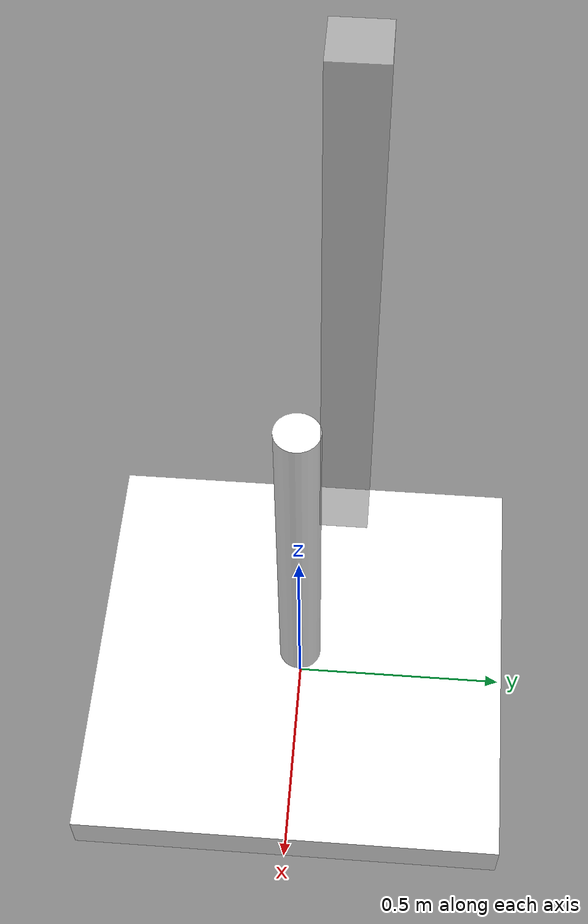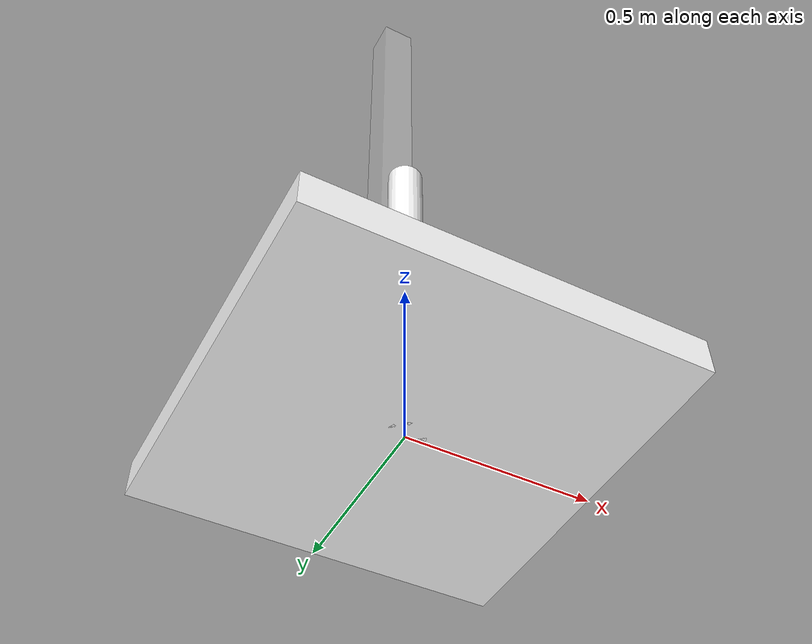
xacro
<robot name="test_robot" xmlns:xacro="http://ros.org/wiki/xacro">
        <link name="base">
          <visual>
            <geometry>
              <box size="1 1 0.1" />
            </geometry>
            <origin xyz="0 0 0.05" rpy="0 0 0"/>
            <material name="white">
              <color rgba="1 1 1 1"/>
            </material>
          </visual>
          <collision>
            <geometry>
                <box size="1 1 0.1" />
            </geometry>
            <origin xyz="0 0 0.05" rpy="0 0 0"/>
          </collision>
          <inertial>
            <mass value="1.6"/>
            <origin xyz="0 0 0" rpy="0 0 0"/>
            <inertia ixx="0.006051" iyy="0" izz="0.009098" ixy="0" ixz="0" iyz="0"/>
          </inertial>
        </link>

        <link name="upperarm">
          <visual>
            <geometry>
              <cylinder length="1" radius="0.05"/>
            </geometry>
            <origin xyz="0 0 0.5" rpy="0 0 0"/>
            <material name="white">
              <color rgba="1 1 1 1"/>
            </material>
          </visual>
          <collision>
            <geometry>
                <cylinder length="1" radius="0.05"/>
            </geometry>
            <origin xyz="0 0 0.5" rpy="0 0 0"/>
          </collision>
          <inertial>
            <mass value="1.6"/>
            <origin xyz="0 0 0" rpy="0 0 0"/>
            <inertia ixx="0.006051" iyy="0" izz="0.009098" ixy="0" ixz="0" iyz="0"/>
          </inertial>
        </link>

        <joint name="base_joint" type="continuous">
            <origin xyz="0 0 0" rpy="0 0 0"/>
            <axis xyz="0 0 1"/>
            <parent link="base"/>
            <child link="upperarm" />
        </joint>

        <link name="lowerarm">
          <visual>
            <geometry>
              <box size="0.1 0.1 1.2" />
            </geometry>
            <origin xyz="0 0 0.4" rpy="0 0 0"/>
            <material name="gray">
                <color rgba="0.8 0.8 0.8 0.5"/>
            </material>
          </visual>
          <collision>
            <geometry>
                <box size="0.1 0.1 1.2" />
            </geometry>
            <origin xyz="0 0 0.4" rpy="0 0 0"/>
          </collision>
          <inertial>
            <mass value="1.6"/>
            <origin xyz="0 0 0" rpy="0 0 0"/>
            <inertia ixx="0.006051" iyy="0" izz="0.009098" ixy="0" ixz="0" iyz="0"/>
          </inertial>
        </link>

        <joint name="y_joint" type="continuous">
            <origin xyz="0 0.1 0.95" rpy="0 0 0"/>
            <axis xyz="0 1 0"/>
            <parent link="upperarm"/>
            <child link="lowerarm"/>
        </joint>
        <gazebo>
          <plugin name="joint_state_publisher" filename="libgazebo_ros_joint_state_publisher.so">
          <jointName>base_joint,y_joint</jointName>
          </plugin>
        </gazebo>
        <gazebo>
          <plugin name="differential_drive_controller" filename="libgazebo_ros_diff_drive.so">
          <leftJoint>base_joint</leftJoint>
          <rightJoint>y_joint</rightJoint>
          <robotBaseFrame>upperarm</robotBaseFrame>
          <wheelSeparation>0.236</wheelSeparation>
          <wheelDiameter>0.17</wheelDiameter>
          <publishWheelJointState>true</publishWheelJointState>
          <legacyMode>false</legacyMode>
          <commandTopic>cmd_vel</commandTopic>
          <odometryTopic>odom</odometryTopic>
          <odometryFrame>odom</odometryFrame>
          <odometrySource>world</odometrySource>
          <publishOdomTF>true</publishOdomTF>
          <publishWheelTF>false</publishWheelTF>
          <publishTf>true</publishTf>
          <updateRate>30</updateRate>
          <wheelAcceleration>1</wheelAcceleration>
          <wheelTorque>10</wheelTorque>
          <rosDebugLevel>na</rosDebugLevel>
          </plugin>
        </gazebo>
</robot>
